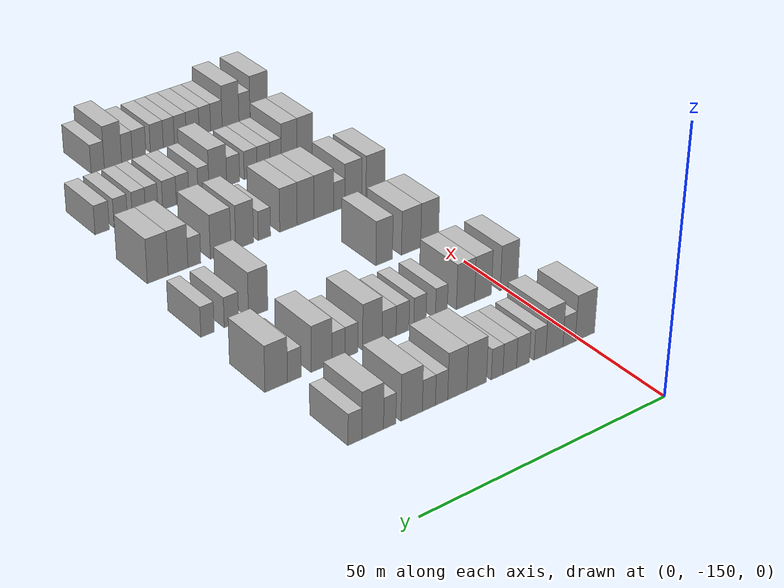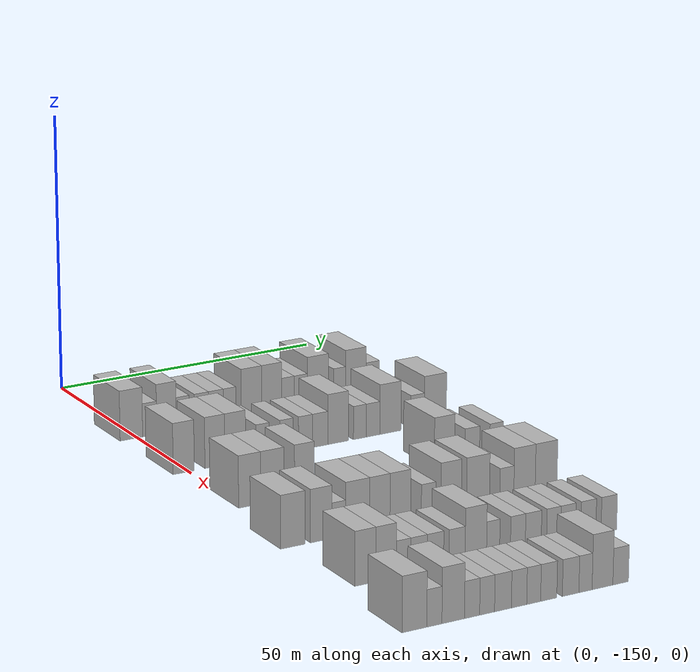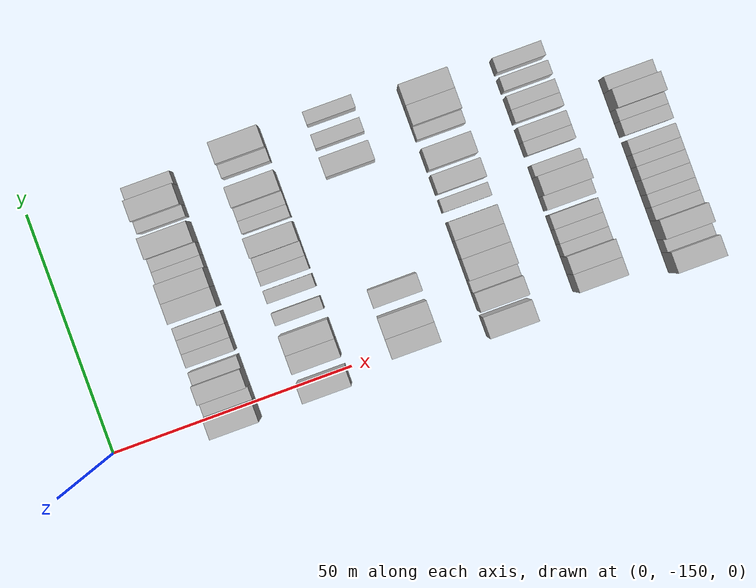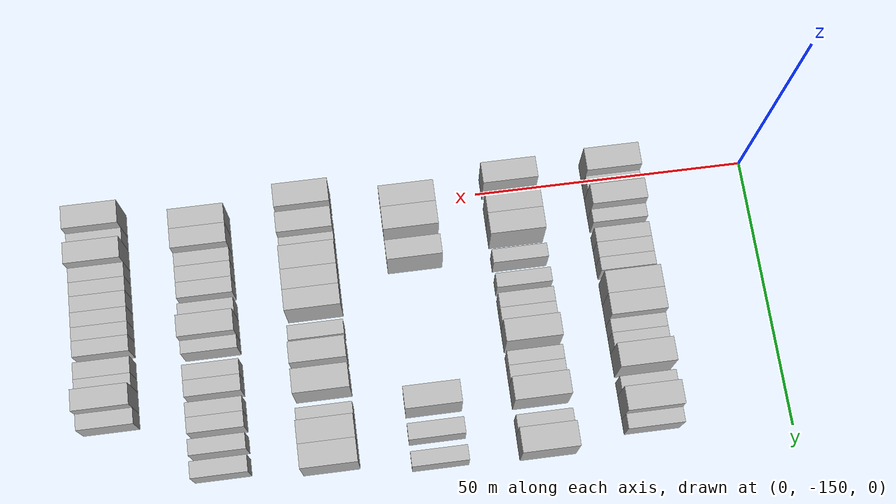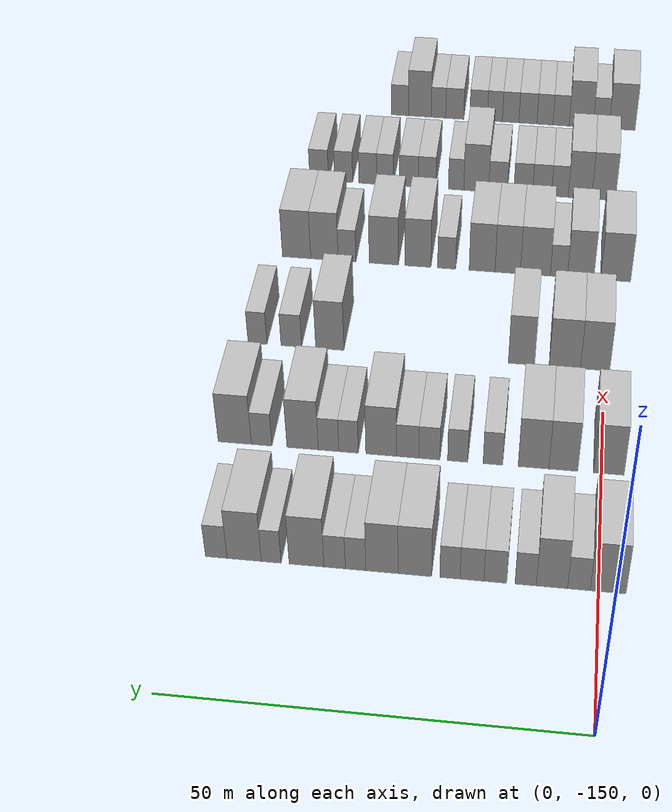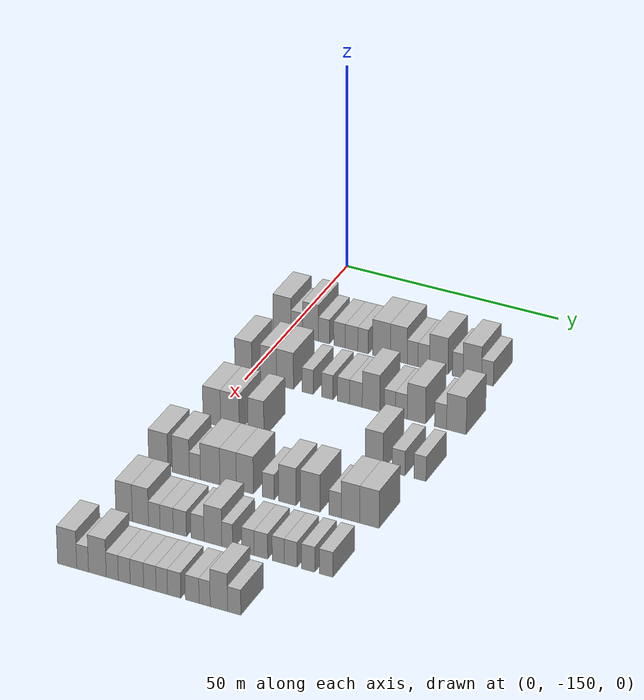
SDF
<sdf version="1.6">
 <world name="default">
  <model name="building_53">
   <static>1</static>
   <pose>25.0000 -151.1227 0 0.000000 0.000000 0.000000</pose>
   <link name="link">
    <pose>0 0 4.50 0 0 0</pose>
    <collision name="collision"><geometry><box><size>10.0000 4.2927 9.0000</size></box></geometry></collision>
    <visual name="visual">
     <cast_shadows>0</cast_shadows>
     <geometry><box><size>10.0000 4.2927 9.0000</size></box></geometry>
     <material>
      <script>
       <uri>model://HANNAS_wall/materials/scripts</uri>
       <uri>model://HANNAS_wall/materials/textures</uri>
       <name>vrc/HANNAS_wall</name>
      </script>
     </material>
    </visual>
   </link>
  </model>
  <model name="building_54">
   <static>1</static>
   <pose>25.0000 -147.6245 0 0.000000 0.000000 0.000000</pose>
   <link name="link">
    <pose>0 0 3.00 0 0 0</pose>
    <collision name="collision"><geometry><box><size>10.0000 2.7038 6.0000</size></box></geometry></collision>
    <visual name="visual">
     <cast_shadows>0</cast_shadows>
     <geometry><box><size>10.0000 2.7038 6.0000</size></box></geometry>
     <material>
      <script>
       <uri>model://HANNAS_wall/materials/scripts</uri>
       <uri>model://HANNAS_wall/materials/textures</uri>
       <name>vrc/HANNAS_wall</name>
      </script>
     </material>
    </visual>
   </link>
  </model>
  <model name="building_55">
   <static>1</static>
   <pose>25.0000 -144.3908 0 0.000000 0.000000 0.000000</pose>
   <link name="link">
    <pose>0 0 4.50 0 0 0</pose>
    <collision name="collision"><geometry><box><size>10.0000 3.7636 9.0000</size></box></geometry></collision>
    <visual name="visual">
     <cast_shadows>0</cast_shadows>
     <geometry><box><size>10.0000 3.7636 9.0000</size></box></geometry>
     <material>
      <script>
       <uri>model://HANNAS_wall/materials/scripts</uri>
       <uri>model://HANNAS_wall/materials/textures</uri>
       <name>vrc/HANNAS_wall</name>
      </script>
     </material>
    </visual>
   </link>
  </model>
  <model name="building_56">
   <static>1</static>
   <pose>25.0000 -141.2279 0 0.000000 0.000000 0.000000</pose>
   <link name="link">
    <pose>0 0 3.00 0 0 0</pose>
    <collision name="collision"><geometry><box><size>10.0000 2.5622 6.0000</size></box></geometry></collision>
    <visual name="visual">
     <cast_shadows>0</cast_shadows>
     <geometry><box><size>10.0000 2.5622 6.0000</size></box></geometry>
     <material>
      <script>
       <uri>model://HANNAS_wall/materials/scripts</uri>
       <uri>model://HANNAS_wall/materials/textures</uri>
       <name>vrc/HANNAS_wall</name>
      </script>
     </material>
    </visual>
   </link>
  </model>
  <model name="building_57">
   <static>1</static>
   <pose>25.0000 -137.5715 0 0.000000 0.000000 0.000000</pose>
   <link name="link">
    <pose>0 0 3.00 0 0 0</pose>
    <collision name="collision"><geometry><box><size>10.0000 2.7507 6.0000</size></box></geometry></collision>
    <visual name="visual">
     <cast_shadows>0</cast_shadows>
     <geometry><box><size>10.0000 2.7507 6.0000</size></box></geometry>
     <material>
      <script>
       <uri>model://HANNAS_wall/materials/scripts</uri>
       <uri>model://HANNAS_wall/materials/textures</uri>
       <name>vrc/HANNAS_wall</name>
      </script>
     </material>
    </visual>
   </link>
  </model>
  <model name="building_58">
   <static>1</static>
   <pose>25.0000 -134.7523 0 0.000000 0.000000 0.000000</pose>
   <link name="link">
    <pose>0 0 3.00 0 0 0</pose>
    <collision name="collision"><geometry><box><size>10.0000 2.8876 6.0000</size></box></geometry></collision>
    <visual name="visual">
     <cast_shadows>0</cast_shadows>
     <geometry><box><size>10.0000 2.8876 6.0000</size></box></geometry>
     <material>
      <script>
       <uri>model://HANNAS_wall/materials/scripts</uri>
       <uri>model://HANNAS_wall/materials/textures</uri>
       <name>vrc/HANNAS_wall</name>
      </script>
     </material>
    </visual>
   </link>
  </model>
  <model name="building_59">
   <static>1</static>
   <pose>25.0000 -132.0738 0 0.000000 0.000000 0.000000</pose>
   <link name="link">
    <pose>0 0 3.00 0 0 0</pose>
    <collision name="collision"><geometry><box><size>10.0000 2.4693 6.0000</size></box></geometry></collision>
    <visual name="visual">
     <cast_shadows>0</cast_shadows>
     <geometry><box><size>10.0000 2.4693 6.0000</size></box></geometry>
     <material>
      <script>
       <uri>model://HANNAS_wall/materials/scripts</uri>
       <uri>model://HANNAS_wall/materials/textures</uri>
       <name>vrc/HANNAS_wall</name>
      </script>
     </material>
    </visual>
   </link>
  </model>
  <model name="building_60">
   <static>1</static>
   <pose>25.0000 -127.7911 0 0.000000 0.000000 0.000000</pose>
   <link name="link">
    <pose>0 0 4.50 0 0 0</pose>
    <collision name="collision"><geometry><box><size>10.0000 4.0962 9.0000</size></box></geometry></collision>
    <visual name="visual">
     <cast_shadows>0</cast_shadows>
     <geometry><box><size>10.0000 4.0962 9.0000</size></box></geometry>
     <material>
      <script>
       <uri>model://HANNAS_wall/materials/scripts</uri>
       <uri>model://HANNAS_wall/materials/textures</uri>
       <name>vrc/HANNAS_wall</name>
      </script>
     </material>
    </visual>
   </link>
  </model>
  <model name="building_61">
   <static>1</static>
   <pose>25.0000 -123.7754 0 0.000000 0.000000 0.000000</pose>
   <link name="link">
    <pose>0 0 4.50 0 0 0</pose>
    <collision name="collision"><geometry><box><size>10.0000 3.9351 9.0000</size></box></geometry></collision>
    <visual name="visual">
     <cast_shadows>0</cast_shadows>
     <geometry><box><size>10.0000 3.9351 9.0000</size></box></geometry>
     <material>
      <script>
       <uri>model://HANNAS_wall/materials/scripts</uri>
       <uri>model://HANNAS_wall/materials/textures</uri>
       <name>vrc/HANNAS_wall</name>
      </script>
     </material>
    </visual>
   </link>
  </model>
  <model name="building_62">
   <static>1</static>
   <pose>25.0000 -120.5484 0 0.000000 0.000000 0.000000</pose>
   <link name="link">
    <pose>0 0 3.00 0 0 0</pose>
    <collision name="collision"><geometry><box><size>10.0000 2.5189 6.0000</size></box></geometry></collision>
    <visual name="visual">
     <cast_shadows>0</cast_shadows>
     <geometry><box><size>10.0000 2.5189 6.0000</size></box></geometry>
     <material>
      <script>
       <uri>model://HANNAS_wall/materials/scripts</uri>
       <uri>model://HANNAS_wall/materials/textures</uri>
       <name>vrc/HANNAS_wall</name>
      </script>
     </material>
    </visual>
   </link>
  </model>
  <model name="building_63">
   <static>1</static>
   <pose>25.0000 -117.9747 0 0.000000 0.000000 0.000000</pose>
   <link name="link">
    <pose>0 0 3.00 0 0 0</pose>
    <collision name="collision"><geometry><box><size>10.0000 2.6286 6.0000</size></box></geometry></collision>
    <visual name="visual">
     <cast_shadows>0</cast_shadows>
     <geometry><box><size>10.0000 2.6286 6.0000</size></box></geometry>
     <material>
      <script>
       <uri>model://HANNAS_wall/materials/scripts</uri>
       <uri>model://HANNAS_wall/materials/textures</uri>
       <name>vrc/HANNAS_wall</name>
      </script>
     </material>
    </visual>
   </link>
  </model>
  <model name="building_64">
   <static>1</static>
   <pose>25.0000 -114.5175 0 0.000000 0.000000 0.000000</pose>
   <link name="link">
    <pose>0 0 4.50 0 0 0</pose>
    <collision name="collision"><geometry><box><size>10.0000 4.2858 9.0000</size></box></geometry></collision>
    <visual name="visual">
     <cast_shadows>0</cast_shadows>
     <geometry><box><size>10.0000 4.2858 9.0000</size></box></geometry>
     <material>
      <script>
       <uri>model://HANNAS_wall/materials/scripts</uri>
       <uri>model://HANNAS_wall/materials/textures</uri>
       <name>vrc/HANNAS_wall</name>
      </script>
     </material>
    </visual>
   </link>
  </model>
  <model name="building_65">
   <static>1</static>
   <pose>25.0000 -110.1541 0 0.000000 0.000000 0.000000</pose>
   <link name="link">
    <pose>0 0 3.00 0 0 0</pose>
    <collision name="collision"><geometry><box><size>10.0000 2.4410 6.0000</size></box></geometry></collision>
    <visual name="visual">
     <cast_shadows>0</cast_shadows>
     <geometry><box><size>10.0000 2.4410 6.0000</size></box></geometry>
     <material>
      <script>
       <uri>model://HANNAS_wall/materials/scripts</uri>
       <uri>model://HANNAS_wall/materials/textures</uri>
       <name>vrc/HANNAS_wall</name>
      </script>
     </material>
    </visual>
   </link>
  </model>
  <model name="building_66">
   <static>1</static>
   <pose>25.0000 -106.8105 0 0.000000 0.000000 0.000000</pose>
   <link name="link">
    <pose>0 0 4.50 0 0 0</pose>
    <collision name="collision"><geometry><box><size>10.0000 4.2462 9.0000</size></box></geometry></collision>
    <visual name="visual">
     <cast_shadows>0</cast_shadows>
     <geometry><box><size>10.0000 4.2462 9.0000</size></box></geometry>
     <material>
      <script>
       <uri>model://HANNAS_wall/materials/scripts</uri>
       <uri>model://HANNAS_wall/materials/textures</uri>
       <name>vrc/HANNAS_wall</name>
      </script>
     </material>
    </visual>
   </link>
  </model>
  <model name="building_67">
   <static>1</static>
   <pose>25.0000 -103.3429 0 0.000000 0.000000 0.000000</pose>
   <link name="link">
    <pose>0 0 3.00 0 0 0</pose>
    <collision name="collision"><geometry><box><size>10.0000 2.6890 6.0000</size></box></geometry></collision>
    <visual name="visual">
     <cast_shadows>0</cast_shadows>
     <geometry><box><size>10.0000 2.6890 6.0000</size></box></geometry>
     <material>
      <script>
       <uri>model://HANNAS_wall/materials/scripts</uri>
       <uri>model://HANNAS_wall/materials/textures</uri>
       <name>vrc/HANNAS_wall</name>
      </script>
     </material>
    </visual>
   </link>
  </model>
  <model name="building_235">
   <static>1</static>
   <pose>44.0000 -150.9046 0 0.000000 0.000000 0.000000</pose>
   <link name="link">
    <pose>0 0 4.50 0 0 0</pose>
    <collision name="collision"><geometry><box><size>10.0000 3.9425 9.0000</size></box></geometry></collision>
    <visual name="visual">
     <cast_shadows>0</cast_shadows>
     <geometry><box><size>10.0000 3.9425 9.0000</size></box></geometry>
     <material>
      <script>
       <uri>model://HANNAS_wall/materials/scripts</uri>
       <uri>model://HANNAS_wall/materials/textures</uri>
       <name>vrc/HANNAS_wall</name>
      </script>
     </material>
    </visual>
   </link>
  </model>
  <model name="building_236">
   <static>1</static>
   <pose>44.0000 -145.0658 0 0.000000 0.000000 0.000000</pose>
   <link name="link">
    <pose>0 0 4.50 0 0 0</pose>
    <collision name="collision"><geometry><box><size>10.0000 3.7351 9.0000</size></box></geometry></collision>
    <visual name="visual">
     <cast_shadows>0</cast_shadows>
     <geometry><box><size>10.0000 3.7351 9.0000</size></box></geometry>
     <material>
      <script>
       <uri>model://HANNAS_wall/materials/scripts</uri>
       <uri>model://HANNAS_wall/materials/textures</uri>
       <name>vrc/HANNAS_wall</name>
      </script>
     </material>
    </visual>
   </link>
  </model>
  <model name="building_237">
   <static>1</static>
   <pose>44.0000 -141.2090 0 0.000000 0.000000 0.000000</pose>
   <link name="link">
    <pose>0 0 4.50 0 0 0</pose>
    <collision name="collision"><geometry><box><size>10.0000 3.9785 9.0000</size></box></geometry></collision>
    <visual name="visual">
     <cast_shadows>0</cast_shadows>
     <geometry><box><size>10.0000 3.9785 9.0000</size></box></geometry>
     <material>
      <script>
       <uri>model://HANNAS_wall/materials/scripts</uri>
       <uri>model://HANNAS_wall/materials/textures</uri>
       <name>vrc/HANNAS_wall</name>
      </script>
     </material>
    </visual>
   </link>
  </model>
  <model name="building_238">
   <static>1</static>
   <pose>44.0000 -135.9481 0 0.000000 0.000000 0.000000</pose>
   <link name="link">
    <pose>0 0 3.00 0 0 0</pose>
    <collision name="collision"><geometry><box><size>10.0000 2.5433 6.0000</size></box></geometry></collision>
    <visual name="visual">
     <cast_shadows>0</cast_shadows>
     <geometry><box><size>10.0000 2.5433 6.0000</size></box></geometry>
     <material>
      <script>
       <uri>model://HANNAS_wall/materials/scripts</uri>
       <uri>model://HANNAS_wall/materials/textures</uri>
       <name>vrc/HANNAS_wall</name>
      </script>
     </material>
    </visual>
   </link>
  </model>
  <model name="building_239">
   <static>1</static>
   <pose>44.0000 -131.3611 0 0.000000 0.000000 0.000000</pose>
   <link name="link">
    <pose>0 0 3.00 0 0 0</pose>
    <collision name="collision"><geometry><box><size>10.0000 2.6307 6.0000</size></box></geometry></collision>
    <visual name="visual">
     <cast_shadows>0</cast_shadows>
     <geometry><box><size>10.0000 2.6307 6.0000</size></box></geometry>
     <material>
      <script>
       <uri>model://HANNAS_wall/materials/scripts</uri>
       <uri>model://HANNAS_wall/materials/textures</uri>
       <name>vrc/HANNAS_wall</name>
      </script>
     </material>
    </visual>
   </link>
  </model>
  <model name="building_240">
   <static>1</static>
   <pose>44.0000 -127.6749 0 0.000000 0.000000 0.000000</pose>
   <link name="link">
    <pose>0 0 3.00 0 0 0</pose>
    <collision name="collision"><geometry><box><size>10.0000 2.7417 6.0000</size></box></geometry></collision>
    <visual name="visual">
     <cast_shadows>0</cast_shadows>
     <geometry><box><size>10.0000 2.7417 6.0000</size></box></geometry>
     <material>
      <script>
       <uri>model://HANNAS_wall/materials/scripts</uri>
       <uri>model://HANNAS_wall/materials/textures</uri>
       <name>vrc/HANNAS_wall</name>
      </script>
     </material>
    </visual>
   </link>
  </model>
  <model name="building_241">
   <static>1</static>
   <pose>44.0000 -124.8290 0 0.000000 0.000000 0.000000</pose>
   <link name="link">
    <pose>0 0 3.00 0 0 0</pose>
    <collision name="collision"><geometry><box><size>10.0000 2.9502 6.0000</size></box></geometry></collision>
    <visual name="visual">
     <cast_shadows>0</cast_shadows>
     <geometry><box><size>10.0000 2.9502 6.0000</size></box></geometry>
     <material>
      <script>
       <uri>model://HANNAS_wall/materials/scripts</uri>
       <uri>model://HANNAS_wall/materials/textures</uri>
       <name>vrc/HANNAS_wall</name>
      </script>
     </material>
    </visual>
   </link>
  </model>
  <model name="building_242">
   <static>1</static>
   <pose>44.0000 -121.3405 0 0.000000 0.000000 0.000000</pose>
   <link name="link">
    <pose>0 0 4.50 0 0 0</pose>
    <collision name="collision"><geometry><box><size>10.0000 4.0269 9.0000</size></box></geometry></collision>
    <visual name="visual">
     <cast_shadows>0</cast_shadows>
     <geometry><box><size>10.0000 4.0269 9.0000</size></box></geometry>
     <material>
      <script>
       <uri>model://HANNAS_wall/materials/scripts</uri>
       <uri>model://HANNAS_wall/materials/textures</uri>
       <name>vrc/HANNAS_wall</name>
      </script>
     </material>
    </visual>
   </link>
  </model>
  <model name="building_243">
   <static>1</static>
   <pose>44.0000 -117.0407 0 0.000000 0.000000 0.000000</pose>
   <link name="link">
    <pose>0 0 3.00 0 0 0</pose>
    <collision name="collision"><geometry><box><size>10.0000 2.5725 6.0000</size></box></geometry></collision>
    <visual name="visual">
     <cast_shadows>0</cast_shadows>
     <geometry><box><size>10.0000 2.5725 6.0000</size></box></geometry>
     <material>
      <script>
       <uri>model://HANNAS_wall/materials/scripts</uri>
       <uri>model://HANNAS_wall/materials/textures</uri>
       <name>vrc/HANNAS_wall</name>
      </script>
     </material>
    </visual>
   </link>
  </model>
  <model name="building_244">
   <static>1</static>
   <pose>44.0000 -114.4057 0 0.000000 0.000000 0.000000</pose>
   <link name="link">
    <pose>0 0 3.00 0 0 0</pose>
    <collision name="collision"><geometry><box><size>10.0000 2.6975 6.0000</size></box></geometry></collision>
    <visual name="visual">
     <cast_shadows>0</cast_shadows>
     <geometry><box><size>10.0000 2.6975 6.0000</size></box></geometry>
     <material>
      <script>
       <uri>model://HANNAS_wall/materials/scripts</uri>
       <uri>model://HANNAS_wall/materials/textures</uri>
       <name>vrc/HANNAS_wall</name>
      </script>
     </material>
    </visual>
   </link>
  </model>
  <model name="building_245">
   <static>1</static>
   <pose>44.0000 -110.9749 0 0.000000 0.000000 0.000000</pose>
   <link name="link">
    <pose>0 0 4.50 0 0 0</pose>
    <collision name="collision"><geometry><box><size>10.0000 4.1641 9.0000</size></box></geometry></collision>
    <visual name="visual">
     <cast_shadows>0</cast_shadows>
     <geometry><box><size>10.0000 4.1641 9.0000</size></box></geometry>
     <material>
      <script>
       <uri>model://HANNAS_wall/materials/scripts</uri>
       <uri>model://HANNAS_wall/materials/textures</uri>
       <name>vrc/HANNAS_wall</name>
      </script>
     </material>
    </visual>
   </link>
  </model>
  <model name="building_246">
   <static>1</static>
   <pose>44.0000 -105.5308 0 0.000000 0.000000 0.000000</pose>
   <link name="link">
    <pose>0 0 3.00 0 0 0</pose>
    <collision name="collision"><geometry><box><size>10.0000 2.7241 6.0000</size></box></geometry></collision>
    <visual name="visual">
     <cast_shadows>0</cast_shadows>
     <geometry><box><size>10.0000 2.7241 6.0000</size></box></geometry>
     <material>
      <script>
       <uri>model://HANNAS_wall/materials/scripts</uri>
       <uri>model://HANNAS_wall/materials/textures</uri>
       <name>vrc/HANNAS_wall</name>
      </script>
     </material>
    </visual>
   </link>
  </model>
  <model name="building_247">
   <static>1</static>
   <pose>44.0000 -101.9537 0 0.000000 0.000000 0.000000</pose>
   <link name="link">
    <pose>0 0 4.50 0 0 0</pose>
    <collision name="collision"><geometry><box><size>10.0000 4.4302 9.0000</size></box></geometry></collision>
    <visual name="visual">
     <cast_shadows>0</cast_shadows>
     <geometry><box><size>10.0000 4.4302 9.0000</size></box></geometry>
     <material>
      <script>
       <uri>model://HANNAS_wall/materials/scripts</uri>
       <uri>model://HANNAS_wall/materials/textures</uri>
       <name>vrc/HANNAS_wall</name>
      </script>
     </material>
    </visual>
   </link>
  </model>
  <model name="building_410">
   <static>1</static>
   <pose>63.0000 -148.7459 0 0.000000 0.000000 0.000000</pose>
   <link name="link">
    <pose>0 0 4.50 0 0 0</pose>
    <collision name="collision"><geometry><box><size>10.0000 4.0321 9.0000</size></box></geometry></collision>
    <visual name="visual">
     <cast_shadows>0</cast_shadows>
     <geometry><box><size>10.0000 4.0321 9.0000</size></box></geometry>
     <material>
      <script>
       <uri>model://HANNAS_wall/materials/scripts</uri>
       <uri>model://HANNAS_wall/materials/textures</uri>
       <name>vrc/HANNAS_wall</name>
      </script>
     </material>
    </visual>
   </link>
  </model>
  <model name="building_411">
   <static>1</static>
   <pose>63.0000 -144.5673 0 0.000000 0.000000 0.000000</pose>
   <link name="link">
    <pose>0 0 4.50 0 0 0</pose>
    <collision name="collision"><geometry><box><size>10.0000 4.3251 9.0000</size></box></geometry></collision>
    <visual name="visual">
     <cast_shadows>0</cast_shadows>
     <geometry><box><size>10.0000 4.3251 9.0000</size></box></geometry>
     <material>
      <script>
       <uri>model://HANNAS_wall/materials/scripts</uri>
       <uri>model://HANNAS_wall/materials/textures</uri>
       <name>vrc/HANNAS_wall</name>
      </script>
     </material>
    </visual>
   </link>
  </model>
  <model name="building_412">
   <static>1</static>
   <pose>63.0000 -138.5787 0 0.000000 0.000000 0.000000</pose>
   <link name="link">
    <pose>0 0 4.50 0 0 0</pose>
    <collision name="collision"><geometry><box><size>10.0000 3.6522 9.0000</size></box></geometry></collision>
    <visual name="visual">
     <cast_shadows>0</cast_shadows>
     <geometry><box><size>10.0000 3.6522 9.0000</size></box></geometry>
     <material>
      <script>
       <uri>model://HANNAS_wall/materials/scripts</uri>
       <uri>model://HANNAS_wall/materials/textures</uri>
       <name>vrc/HANNAS_wall</name>
      </script>
     </material>
    </visual>
   </link>
  </model>
  <model name="building_413">
   <static>1</static>
   <pose>63.0000 -111.7636 0 0.000000 0.000000 0.000000</pose>
   <link name="link">
    <pose>0 0 4.50 0 0 0</pose>
    <collision name="collision"><geometry><box><size>10.0000 3.9927 9.0000</size></box></geometry></collision>
    <visual name="visual">
     <cast_shadows>0</cast_shadows>
     <geometry><box><size>10.0000 3.9927 9.0000</size></box></geometry>
     <material>
      <script>
       <uri>model://HANNAS_wall/materials/scripts</uri>
       <uri>model://HANNAS_wall/materials/textures</uri>
       <name>vrc/HANNAS_wall</name>
      </script>
     </material>
    </visual>
   </link>
  </model>
  <model name="building_414">
   <static>1</static>
   <pose>63.0000 -106.3095 0 0.000000 0.000000 0.000000</pose>
   <link name="link">
    <pose>0 0 3.00 0 0 0</pose>
    <collision name="collision"><geometry><box><size>10.0000 2.9155 6.0000</size></box></geometry></collision>
    <visual name="visual">
     <cast_shadows>0</cast_shadows>
     <geometry><box><size>10.0000 2.9155 6.0000</size></box></geometry>
     <material>
      <script>
       <uri>model://HANNAS_wall/materials/scripts</uri>
       <uri>model://HANNAS_wall/materials/textures</uri>
       <name>vrc/HANNAS_wall</name>
      </script>
     </material>
    </visual>
   </link>
  </model>
  <model name="building_415">
   <static>1</static>
   <pose>63.0000 -101.5099 0 0.000000 0.000000 0.000000</pose>
   <link name="link">
    <pose>0 0 3.00 0 0 0</pose>
    <collision name="collision"><geometry><box><size>10.0000 2.6838 6.0000</size></box></geometry></collision>
    <visual name="visual">
     <cast_shadows>0</cast_shadows>
     <geometry><box><size>10.0000 2.6838 6.0000</size></box></geometry>
     <material>
      <script>
       <uri>model://HANNAS_wall/materials/scripts</uri>
       <uri>model://HANNAS_wall/materials/textures</uri>
       <name>vrc/HANNAS_wall</name>
      </script>
     </material>
    </visual>
   </link>
  </model>
  <model name="building_570">
   <static>1</static>
   <pose>82.0000 -151.3173 0 0.000000 0.000000 0.000000</pose>
   <link name="link">
    <pose>0 0 4.50 0 0 0</pose>
    <collision name="collision"><geometry><box><size>10.0000 4.3778 9.0000</size></box></geometry></collision>
    <visual name="visual">
     <cast_shadows>0</cast_shadows>
     <geometry><box><size>10.0000 4.3778 9.0000</size></box></geometry>
     <material>
      <script>
       <uri>model://HANNAS_wall/materials/scripts</uri>
       <uri>model://HANNAS_wall/materials/textures</uri>
       <name>vrc/HANNAS_wall</name>
      </script>
     </material>
    </visual>
   </link>
  </model>
  <model name="building_571">
   <static>1</static>
   <pose>82.0000 -146.1962 0 0.000000 0.000000 0.000000</pose>
   <link name="link">
    <pose>0 0 4.50 0 0 0</pose>
    <collision name="collision"><geometry><box><size>10.0000 3.8644 9.0000</size></box></geometry></collision>
    <visual name="visual">
     <cast_shadows>0</cast_shadows>
     <geometry><box><size>10.0000 3.8644 9.0000</size></box></geometry>
     <material>
      <script>
       <uri>model://HANNAS_wall/materials/scripts</uri>
       <uri>model://HANNAS_wall/materials/textures</uri>
       <name>vrc/HANNAS_wall</name>
      </script>
     </material>
    </visual>
   </link>
  </model>
  <model name="building_572">
   <static>1</static>
   <pose>82.0000 -143.0005 0 0.000000 0.000000 0.000000</pose>
   <link name="link">
    <pose>0 0 3.00 0 0 0</pose>
    <collision name="collision"><geometry><box><size>10.0000 2.5272 6.0000</size></box></geometry></collision>
    <visual name="visual">
     <cast_shadows>0</cast_shadows>
     <geometry><box><size>10.0000 2.5272 6.0000</size></box></geometry>
     <material>
      <script>
       <uri>model://HANNAS_wall/materials/scripts</uri>
       <uri>model://HANNAS_wall/materials/textures</uri>
       <name>vrc/HANNAS_wall</name>
      </script>
     </material>
    </visual>
   </link>
  </model>
  <model name="building_573">
   <static>1</static>
   <pose>82.0000 -139.5333 0 0.000000 0.000000 0.000000</pose>
   <link name="link">
    <pose>0 0 4.50 0 0 0</pose>
    <collision name="collision"><geometry><box><size>10.0000 4.4072 9.0000</size></box></geometry></collision>
    <visual name="visual">
     <cast_shadows>0</cast_shadows>
     <geometry><box><size>10.0000 4.4072 9.0000</size></box></geometry>
     <material>
      <script>
       <uri>model://HANNAS_wall/materials/scripts</uri>
       <uri>model://HANNAS_wall/materials/textures</uri>
       <name>vrc/HANNAS_wall</name>
      </script>
     </material>
    </visual>
   </link>
  </model>
  <model name="building_574">
   <static>1</static>
   <pose>82.0000 -135.4623 0 0.000000 0.000000 0.000000</pose>
   <link name="link">
    <pose>0 0 4.50 0 0 0</pose>
    <collision name="collision"><geometry><box><size>10.0000 3.7348 9.0000</size></box></geometry></collision>
    <visual name="visual">
     <cast_shadows>0</cast_shadows>
     <geometry><box><size>10.0000 3.7348 9.0000</size></box></geometry>
     <material>
      <script>
       <uri>model://HANNAS_wall/materials/scripts</uri>
       <uri>model://HANNAS_wall/materials/textures</uri>
       <name>vrc/HANNAS_wall</name>
      </script>
     </material>
    </visual>
   </link>
  </model>
  <model name="building_575">
   <static>1</static>
   <pose>82.0000 -131.6787 0 0.000000 0.000000 0.000000</pose>
   <link name="link">
    <pose>0 0 4.50 0 0 0</pose>
    <collision name="collision"><geometry><box><size>10.0000 3.8324 9.0000</size></box></geometry></collision>
    <visual name="visual">
     <cast_shadows>0</cast_shadows>
     <geometry><box><size>10.0000 3.8324 9.0000</size></box></geometry>
     <material>
      <script>
       <uri>model://HANNAS_wall/materials/scripts</uri>
       <uri>model://HANNAS_wall/materials/textures</uri>
       <name>vrc/HANNAS_wall</name>
      </script>
     </material>
    </visual>
   </link>
  </model>
  <model name="building_576">
   <static>1</static>
   <pose>82.0000 -126.4218 0 0.000000 0.000000 0.000000</pose>
   <link name="link">
    <pose>0 0 3.00 0 0 0</pose>
    <collision name="collision"><geometry><box><size>10.0000 2.6814 6.0000</size></box></geometry></collision>
    <visual name="visual">
     <cast_shadows>0</cast_shadows>
     <geometry><box><size>10.0000 2.6814 6.0000</size></box></geometry>
     <material>
      <script>
       <uri>model://HANNAS_wall/materials/scripts</uri>
       <uri>model://HANNAS_wall/materials/textures</uri>
       <name>vrc/HANNAS_wall</name>
      </script>
     </material>
    </visual>
   </link>
  </model>
  <model name="building_577">
   <static>1</static>
   <pose>82.0000 -122.1553 0 0.000000 0.000000 0.000000</pose>
   <link name="link">
    <pose>0 0 4.50 0 0 0</pose>
    <collision name="collision"><geometry><box><size>10.0000 3.8517 9.0000</size></box></geometry></collision>
    <visual name="visual">
     <cast_shadows>0</cast_shadows>
     <geometry><box><size>10.0000 3.8517 9.0000</size></box></geometry>
     <material>
      <script>
       <uri>model://HANNAS_wall/materials/scripts</uri>
       <uri>model://HANNAS_wall/materials/textures</uri>
       <name>vrc/HANNAS_wall</name>
      </script>
     </material>
    </visual>
   </link>
  </model>
  <model name="building_578">
   <static>1</static>
   <pose>82.0000 -117.0519 0 0.000000 0.000000 0.000000</pose>
   <link name="link">
    <pose>0 0 4.50 0 0 0</pose>
    <collision name="collision"><geometry><box><size>10.0000 4.3551 9.0000</size></box></geometry></collision>
    <visual name="visual">
     <cast_shadows>0</cast_shadows>
     <geometry><box><size>10.0000 4.3551 9.0000</size></box></geometry>
     <material>
      <script>
       <uri>model://HANNAS_wall/materials/scripts</uri>
       <uri>model://HANNAS_wall/materials/textures</uri>
       <name>vrc/HANNAS_wall</name>
      </script>
     </material>
    </visual>
   </link>
  </model>
  <model name="building_579">
   <static>1</static>
   <pose>82.0000 -111.5349 0 0.000000 0.000000 0.000000</pose>
   <link name="link">
    <pose>0 0 3.00 0 0 0</pose>
    <collision name="collision"><geometry><box><size>10.0000 2.6788 6.0000</size></box></geometry></collision>
    <visual name="visual">
     <cast_shadows>0</cast_shadows>
     <geometry><box><size>10.0000 2.6788 6.0000</size></box></geometry>
     <material>
      <script>
       <uri>model://HANNAS_wall/materials/scripts</uri>
       <uri>model://HANNAS_wall/materials/textures</uri>
       <name>vrc/HANNAS_wall</name>
      </script>
     </material>
    </visual>
   </link>
  </model>
  <model name="building_580">
   <static>1</static>
   <pose>82.0000 -108.1360 0 0.000000 0.000000 0.000000</pose>
   <link name="link">
    <pose>0 0 4.50 0 0 0</pose>
    <collision name="collision"><geometry><box><size>10.0000 4.1192 9.0000</size></box></geometry></collision>
    <visual name="visual">
     <cast_shadows>0</cast_shadows>
     <geometry><box><size>10.0000 4.1192 9.0000</size></box></geometry>
     <material>
      <script>
       <uri>model://HANNAS_wall/materials/scripts</uri>
       <uri>model://HANNAS_wall/materials/textures</uri>
       <name>vrc/HANNAS_wall</name>
      </script>
     </material>
    </visual>
   </link>
  </model>
  <model name="building_581">
   <static>1</static>
   <pose>82.0000 -103.9483 0 0.000000 0.000000 0.000000</pose>
   <link name="link">
    <pose>0 0 4.50 0 0 0</pose>
    <collision name="collision"><geometry><box><size>10.0000 4.2561 9.0000</size></box></geometry></collision>
    <visual name="visual">
     <cast_shadows>0</cast_shadows>
     <geometry><box><size>10.0000 4.2561 9.0000</size></box></geometry>
     <material>
      <script>
       <uri>model://HANNAS_wall/materials/scripts</uri>
       <uri>model://HANNAS_wall/materials/textures</uri>
       <name>vrc/HANNAS_wall</name>
      </script>
     </material>
    </visual>
   </link>
  </model>
  <model name="building_743">
   <static>1</static>
   <pose>101.0000 -149.2063 0 0.000000 0.000000 0.000000</pose>
   <link name="link">
    <pose>0 0 4.50 0 0 0</pose>
    <collision name="collision"><geometry><box><size>10.0000 3.6864 9.0000</size></box></geometry></collision>
    <visual name="visual">
     <cast_shadows>0</cast_shadows>
     <geometry><box><size>10.0000 3.6864 9.0000</size></box></geometry>
     <material>
      <script>
       <uri>model://HANNAS_wall/materials/scripts</uri>
       <uri>model://HANNAS_wall/materials/textures</uri>
       <name>vrc/HANNAS_wall</name>
      </script>
     </material>
    </visual>
   </link>
  </model>
  <model name="building_744">
   <static>1</static>
   <pose>101.0000 -145.5354 0 0.000000 0.000000 0.000000</pose>
   <link name="link">
    <pose>0 0 4.50 0 0 0</pose>
    <collision name="collision"><geometry><box><size>10.0000 3.6554 9.0000</size></box></geometry></collision>
    <visual name="visual">
     <cast_shadows>0</cast_shadows>
     <geometry><box><size>10.0000 3.6554 9.0000</size></box></geometry>
     <material>
      <script>
       <uri>model://HANNAS_wall/materials/scripts</uri>
       <uri>model://HANNAS_wall/materials/textures</uri>
       <name>vrc/HANNAS_wall</name>
      </script>
     </material>
    </visual>
   </link>
  </model>
  <model name="building_745">
   <static>1</static>
   <pose>101.0000 -142.4182 0 0.000000 0.000000 0.000000</pose>
   <link name="link">
    <pose>0 0 3.00 0 0 0</pose>
    <collision name="collision"><geometry><box><size>10.0000 2.5790 6.0000</size></box></geometry></collision>
    <visual name="visual">
     <cast_shadows>0</cast_shadows>
     <geometry><box><size>10.0000 2.5790 6.0000</size></box></geometry>
     <material>
      <script>
       <uri>model://HANNAS_wall/materials/scripts</uri>
       <uri>model://HANNAS_wall/materials/textures</uri>
       <name>vrc/HANNAS_wall</name>
      </script>
     </material>
    </visual>
   </link>
  </model>
  <model name="building_746">
   <static>1</static>
   <pose>101.0000 -139.6485 0 0.000000 0.000000 0.000000</pose>
   <link name="link">
    <pose>0 0 3.00 0 0 0</pose>
    <collision name="collision"><geometry><box><size>10.0000 2.9604 6.0000</size></box></geometry></collision>
    <visual name="visual">
     <cast_shadows>0</cast_shadows>
     <geometry><box><size>10.0000 2.9604 6.0000</size></box></geometry>
     <material>
      <script>
       <uri>model://HANNAS_wall/materials/scripts</uri>
       <uri>model://HANNAS_wall/materials/textures</uri>
       <name>vrc/HANNAS_wall</name>
      </script>
     </material>
    </visual>
   </link>
  </model>
  <model name="building_747">
   <static>1</static>
   <pose>101.0000 -136.6929 0 0.000000 0.000000 0.000000</pose>
   <link name="link">
    <pose>0 0 3.00 0 0 0</pose>
    <collision name="collision"><geometry><box><size>10.0000 2.9507 6.0000</size></box></geometry></collision>
    <visual name="visual">
     <cast_shadows>0</cast_shadows>
     <geometry><box><size>10.0000 2.9507 6.0000</size></box></geometry>
     <material>
      <script>
       <uri>model://HANNAS_wall/materials/scripts</uri>
       <uri>model://HANNAS_wall/materials/textures</uri>
       <name>vrc/HANNAS_wall</name>
      </script>
     </material>
    </visual>
   </link>
  </model>
  <model name="building_748">
   <static>1</static>
   <pose>101.0000 -132.7622 0 0.000000 0.000000 0.000000</pose>
   <link name="link">
    <pose>0 0 3.00 0 0 0</pose>
    <collision name="collision"><geometry><box><size>10.0000 2.9107 6.0000</size></box></geometry></collision>
    <visual name="visual">
     <cast_shadows>0</cast_shadows>
     <geometry><box><size>10.0000 2.9107 6.0000</size></box></geometry>
     <material>
      <script>
       <uri>model://HANNAS_wall/materials/scripts</uri>
       <uri>model://HANNAS_wall/materials/textures</uri>
       <name>vrc/HANNAS_wall</name>
      </script>
     </material>
    </visual>
   </link>
  </model>
  <model name="building_749">
   <static>1</static>
   <pose>101.0000 -129.3415 0 0.000000 0.000000 0.000000</pose>
   <link name="link">
    <pose>0 0 4.50 0 0 0</pose>
    <collision name="collision"><geometry><box><size>10.0000 3.9308 9.0000</size></box></geometry></collision>
    <visual name="visual">
     <cast_shadows>0</cast_shadows>
     <geometry><box><size>10.0000 3.9308 9.0000</size></box></geometry>
     <material>
      <script>
       <uri>model://HANNAS_wall/materials/scripts</uri>
       <uri>model://HANNAS_wall/materials/textures</uri>
       <name>vrc/HANNAS_wall</name>
      </script>
     </material>
    </visual>
   </link>
  </model>
  <model name="building_750">
   <static>1</static>
   <pose>101.0000 -126.1719 0 0.000000 0.000000 0.000000</pose>
   <link name="link">
    <pose>0 0 3.00 0 0 0</pose>
    <collision name="collision"><geometry><box><size>10.0000 2.4084 6.0000</size></box></geometry></collision>
    <visual name="visual">
     <cast_shadows>0</cast_shadows>
     <geometry><box><size>10.0000 2.4084 6.0000</size></box></geometry>
     <material>
      <script>
       <uri>model://HANNAS_wall/materials/scripts</uri>
       <uri>model://HANNAS_wall/materials/textures</uri>
       <name>vrc/HANNAS_wall</name>
      </script>
     </material>
    </visual>
   </link>
  </model>
  <model name="building_751">
   <static>1</static>
   <pose>101.0000 -121.5908 0 0.000000 0.000000 0.000000</pose>
   <link name="link">
    <pose>0 0 3.00 0 0 0</pose>
    <collision name="collision"><geometry><box><size>10.0000 2.7536 6.0000</size></box></geometry></collision>
    <visual name="visual">
     <cast_shadows>0</cast_shadows>
     <geometry><box><size>10.0000 2.7536 6.0000</size></box></geometry>
     <material>
      <script>
       <uri>model://HANNAS_wall/materials/scripts</uri>
       <uri>model://HANNAS_wall/materials/textures</uri>
       <name>vrc/HANNAS_wall</name>
      </script>
     </material>
    </visual>
   </link>
  </model>
  <model name="building_752">
   <static>1</static>
   <pose>101.0000 -118.7264 0 0.000000 0.000000 0.000000</pose>
   <link name="link">
    <pose>0 0 3.00 0 0 0</pose>
    <collision name="collision"><geometry><box><size>10.0000 2.9752 6.0000</size></box></geometry></collision>
    <visual name="visual">
     <cast_shadows>0</cast_shadows>
     <geometry><box><size>10.0000 2.9752 6.0000</size></box></geometry>
     <material>
      <script>
       <uri>model://HANNAS_wall/materials/scripts</uri>
       <uri>model://HANNAS_wall/materials/textures</uri>
       <name>vrc/HANNAS_wall</name>
      </script>
     </material>
    </visual>
   </link>
  </model>
  <model name="building_753">
   <static>1</static>
   <pose>101.0000 -114.9221 0 0.000000 0.000000 0.000000</pose>
   <link name="link">
    <pose>0 0 3.00 0 0 0</pose>
    <collision name="collision"><geometry><box><size>10.0000 2.6335 6.0000</size></box></geometry></collision>
    <visual name="visual">
     <cast_shadows>0</cast_shadows>
     <geometry><box><size>10.0000 2.6335 6.0000</size></box></geometry>
     <material>
      <script>
       <uri>model://HANNAS_wall/materials/scripts</uri>
       <uri>model://HANNAS_wall/materials/textures</uri>
       <name>vrc/HANNAS_wall</name>
      </script>
     </material>
    </visual>
   </link>
  </model>
  <model name="building_754">
   <static>1</static>
   <pose>101.0000 -112.1930 0 0.000000 0.000000 0.000000</pose>
   <link name="link">
    <pose>0 0 3.00 0 0 0</pose>
    <collision name="collision"><geometry><box><size>10.0000 2.8246 6.0000</size></box></geometry></collision>
    <visual name="visual">
     <cast_shadows>0</cast_shadows>
     <geometry><box><size>10.0000 2.8246 6.0000</size></box></geometry>
     <material>
      <script>
       <uri>model://HANNAS_wall/materials/scripts</uri>
       <uri>model://HANNAS_wall/materials/textures</uri>
       <name>vrc/HANNAS_wall</name>
      </script>
     </material>
    </visual>
   </link>
  </model>
  <model name="building_755">
   <static>1</static>
   <pose>101.0000 -108.3542 0 0.000000 0.000000 0.000000</pose>
   <link name="link">
    <pose>0 0 3.00 0 0 0</pose>
    <collision name="collision"><geometry><box><size>10.0000 2.8529 6.0000</size></box></geometry></collision>
    <visual name="visual">
     <cast_shadows>0</cast_shadows>
     <geometry><box><size>10.0000 2.8529 6.0000</size></box></geometry>
     <material>
      <script>
       <uri>model://HANNAS_wall/materials/scripts</uri>
       <uri>model://HANNAS_wall/materials/textures</uri>
       <name>vrc/HANNAS_wall</name>
      </script>
     </material>
    </visual>
   </link>
  </model>
  <model name="building_756">
   <static>1</static>
   <pose>101.0000 -104.4372 0 0.000000 0.000000 0.000000</pose>
   <link name="link">
    <pose>0 0 3.00 0 0 0</pose>
    <collision name="collision"><geometry><box><size>10.0000 2.9811 6.0000</size></box></geometry></collision>
    <visual name="visual">
     <cast_shadows>0</cast_shadows>
     <geometry><box><size>10.0000 2.9811 6.0000</size></box></geometry>
     <material>
      <script>
       <uri>model://HANNAS_wall/materials/scripts</uri>
       <uri>model://HANNAS_wall/materials/textures</uri>
       <name>vrc/HANNAS_wall</name>
      </script>
     </material>
    </visual>
   </link>
  </model>
  <model name="building_904">
   <static>1</static>
   <pose>120.0000 -151.8961 0 0.000000 0.000000 0.000000</pose>
   <link name="link">
    <pose>0 0 4.50 0 0 0</pose>
    <collision name="collision"><geometry><box><size>10.0000 4.2689 9.0000</size></box></geometry></collision>
    <visual name="visual">
     <cast_shadows>0</cast_shadows>
     <geometry><box><size>10.0000 4.2689 9.0000</size></box></geometry>
     <material>
      <script>
       <uri>model://HANNAS_wall/materials/scripts</uri>
       <uri>model://HANNAS_wall/materials/textures</uri>
       <name>vrc/HANNAS_wall</name>
      </script>
     </material>
    </visual>
   </link>
  </model>
  <model name="building_905">
   <static>1</static>
   <pose>120.0000 -148.4484 0 0.000000 0.000000 0.000000</pose>
   <link name="link">
    <pose>0 0 3.00 0 0 0</pose>
    <collision name="collision"><geometry><box><size>10.0000 2.6266 6.0000</size></box></geometry></collision>
    <visual name="visual">
     <cast_shadows>0</cast_shadows>
     <geometry><box><size>10.0000 2.6266 6.0000</size></box></geometry>
     <material>
      <script>
       <uri>model://HANNAS_wall/materials/scripts</uri>
       <uri>model://HANNAS_wall/materials/textures</uri>
       <name>vrc/HANNAS_wall</name>
      </script>
     </material>
    </visual>
   </link>
  </model>
  <model name="building_906">
   <static>1</static>
   <pose>120.0000 -145.1699 0 0.000000 0.000000 0.000000</pose>
   <link name="link">
    <pose>0 0 4.50 0 0 0</pose>
    <collision name="collision"><geometry><box><size>10.0000 3.9304 9.0000</size></box></geometry></collision>
    <visual name="visual">
     <cast_shadows>0</cast_shadows>
     <geometry><box><size>10.0000 3.9304 9.0000</size></box></geometry>
     <material>
      <script>
       <uri>model://HANNAS_wall/materials/scripts</uri>
       <uri>model://HANNAS_wall/materials/textures</uri>
       <name>vrc/HANNAS_wall</name>
      </script>
     </material>
    </visual>
   </link>
  </model>
  <model name="building_907">
   <static>1</static>
   <pose>120.0000 -141.8692 0 0.000000 0.000000 0.000000</pose>
   <link name="link">
    <pose>0 0 3.00 0 0 0</pose>
    <collision name="collision"><geometry><box><size>10.0000 2.6710 6.0000</size></box></geometry></collision>
    <visual name="visual">
     <cast_shadows>0</cast_shadows>
     <geometry><box><size>10.0000 2.6710 6.0000</size></box></geometry>
     <material>
      <script>
       <uri>model://HANNAS_wall/materials/scripts</uri>
       <uri>model://HANNAS_wall/materials/textures</uri>
       <name>vrc/HANNAS_wall</name>
      </script>
     </material>
    </visual>
   </link>
  </model>
  <model name="building_908">
   <static>1</static>
   <pose>120.0000 -139.2183 0 0.000000 0.000000 0.000000</pose>
   <link name="link">
    <pose>0 0 3.00 0 0 0</pose>
    <collision name="collision"><geometry><box><size>10.0000 2.6308 6.0000</size></box></geometry></collision>
    <visual name="visual">
     <cast_shadows>0</cast_shadows>
     <geometry><box><size>10.0000 2.6308 6.0000</size></box></geometry>
     <material>
      <script>
       <uri>model://HANNAS_wall/materials/scripts</uri>
       <uri>model://HANNAS_wall/materials/textures</uri>
       <name>vrc/HANNAS_wall</name>
      </script>
     </material>
    </visual>
   </link>
  </model>
  <model name="building_909">
   <static>1</static>
   <pose>120.0000 -136.4117 0 0.000000 0.000000 0.000000</pose>
   <link name="link">
    <pose>0 0 3.00 0 0 0</pose>
    <collision name="collision"><geometry><box><size>10.0000 2.9823 6.0000</size></box></geometry></collision>
    <visual name="visual">
     <cast_shadows>0</cast_shadows>
     <geometry><box><size>10.0000 2.9823 6.0000</size></box></geometry>
     <material>
      <script>
       <uri>model://HANNAS_wall/materials/scripts</uri>
       <uri>model://HANNAS_wall/materials/textures</uri>
       <name>vrc/HANNAS_wall</name>
      </script>
     </material>
    </visual>
   </link>
  </model>
  <model name="building_910">
   <static>1</static>
   <pose>120.0000 -133.5527 0 0.000000 0.000000 0.000000</pose>
   <link name="link">
    <pose>0 0 3.00 0 0 0</pose>
    <collision name="collision"><geometry><box><size>10.0000 2.7357 6.0000</size></box></geometry></collision>
    <visual name="visual">
     <cast_shadows>0</cast_shadows>
     <geometry><box><size>10.0000 2.7357 6.0000</size></box></geometry>
     <material>
      <script>
       <uri>model://HANNAS_wall/materials/scripts</uri>
       <uri>model://HANNAS_wall/materials/textures</uri>
       <name>vrc/HANNAS_wall</name>
      </script>
     </material>
    </visual>
   </link>
  </model>
  <model name="building_911">
   <static>1</static>
   <pose>120.0000 -130.9372 0 0.000000 0.000000 0.000000</pose>
   <link name="link">
    <pose>0 0 3.00 0 0 0</pose>
    <collision name="collision"><geometry><box><size>10.0000 2.4953 6.0000</size></box></geometry></collision>
    <visual name="visual">
     <cast_shadows>0</cast_shadows>
     <geometry><box><size>10.0000 2.4953 6.0000</size></box></geometry>
     <material>
      <script>
       <uri>model://HANNAS_wall/materials/scripts</uri>
       <uri>model://HANNAS_wall/materials/textures</uri>
       <name>vrc/HANNAS_wall</name>
      </script>
     </material>
    </visual>
   </link>
  </model>
  <model name="building_912">
   <static>1</static>
   <pose>120.0000 -128.2327 0 0.000000 0.000000 0.000000</pose>
   <link name="link">
    <pose>0 0 3.00 0 0 0</pose>
    <collision name="collision"><geometry><box><size>10.0000 2.9136 6.0000</size></box></geometry></collision>
    <visual name="visual">
     <cast_shadows>0</cast_shadows>
     <geometry><box><size>10.0000 2.9136 6.0000</size></box></geometry>
     <material>
      <script>
       <uri>model://HANNAS_wall/materials/scripts</uri>
       <uri>model://HANNAS_wall/materials/textures</uri>
       <name>vrc/HANNAS_wall</name>
      </script>
     </material>
    </visual>
   </link>
  </model>
  <model name="building_913">
   <static>1</static>
   <pose>120.0000 -124.2765 0 0.000000 0.000000 0.000000</pose>
   <link name="link">
    <pose>0 0 3.00 0 0 0</pose>
    <collision name="collision"><geometry><box><size>10.0000 2.9988 6.0000</size></box></geometry></collision>
    <visual name="visual">
     <cast_shadows>0</cast_shadows>
     <geometry><box><size>10.0000 2.9988 6.0000</size></box></geometry>
     <material>
      <script>
       <uri>model://HANNAS_wall/materials/scripts</uri>
       <uri>model://HANNAS_wall/materials/textures</uri>
       <name>vrc/HANNAS_wall</name>
      </script>
     </material>
    </visual>
   </link>
  </model>
  <model name="building_914">
   <static>1</static>
   <pose>120.0000 -121.5733 0 0.000000 0.000000 0.000000</pose>
   <link name="link">
    <pose>0 0 3.00 0 0 0</pose>
    <collision name="collision"><geometry><box><size>10.0000 2.4078 6.0000</size></box></geometry></collision>
    <visual name="visual">
     <cast_shadows>0</cast_shadows>
     <geometry><box><size>10.0000 2.4078 6.0000</size></box></geometry>
     <material>
      <script>
       <uri>model://HANNAS_wall/materials/scripts</uri>
       <uri>model://HANNAS_wall/materials/textures</uri>
       <name>vrc/HANNAS_wall</name>
      </script>
     </material>
    </visual>
   </link>
  </model>
  <model name="building_915">
   <static>1</static>
   <pose>120.0000 -118.4648 0 0.000000 0.000000 0.000000</pose>
   <link name="link">
    <pose>0 0 4.50 0 0 0</pose>
    <collision name="collision"><geometry><box><size>10.0000 3.8091 9.0000</size></box></geometry></collision>
    <visual name="visual">
     <cast_shadows>0</cast_shadows>
     <geometry><box><size>10.0000 3.8091 9.0000</size></box></geometry>
     <material>
      <script>
       <uri>model://HANNAS_wall/materials/scripts</uri>
       <uri>model://HANNAS_wall/materials/textures</uri>
       <name>vrc/HANNAS_wall</name>
      </script>
     </material>
    </visual>
   </link>
  </model>
  <model name="building_916">
   <static>1</static>
   <pose>120.0000 -115.1264 0 0.000000 0.000000 0.000000</pose>
   <link name="link">
    <pose>0 0 3.00 0 0 0</pose>
    <collision name="collision"><geometry><box><size>10.0000 2.8679 6.0000</size></box></geometry></collision>
    <visual name="visual">
     <cast_shadows>0</cast_shadows>
     <geometry><box><size>10.0000 2.8679 6.0000</size></box></geometry>
     <material>
      <script>
       <uri>model://HANNAS_wall/materials/scripts</uri>
       <uri>model://HANNAS_wall/materials/textures</uri>
       <name>vrc/HANNAS_wall</name>
      </script>
     </material>
    </visual>
   </link>
  </model>
 </world>
</sdf>
